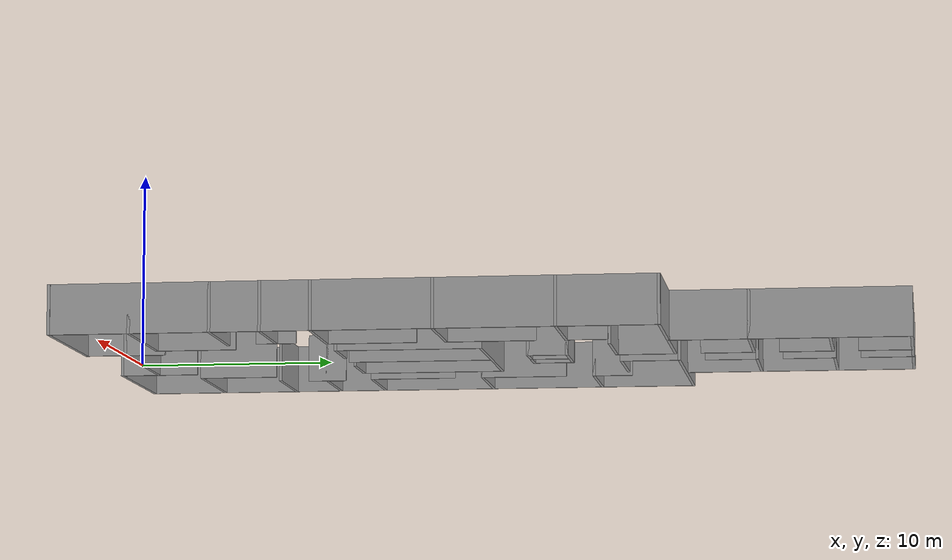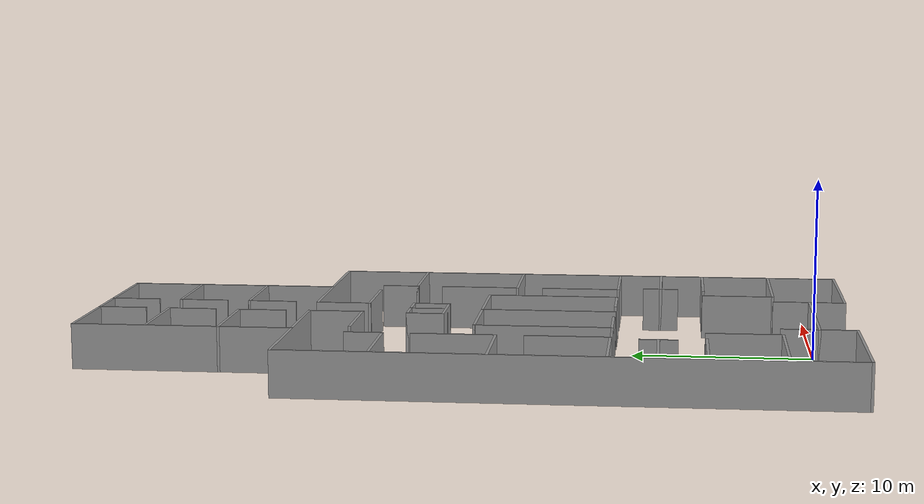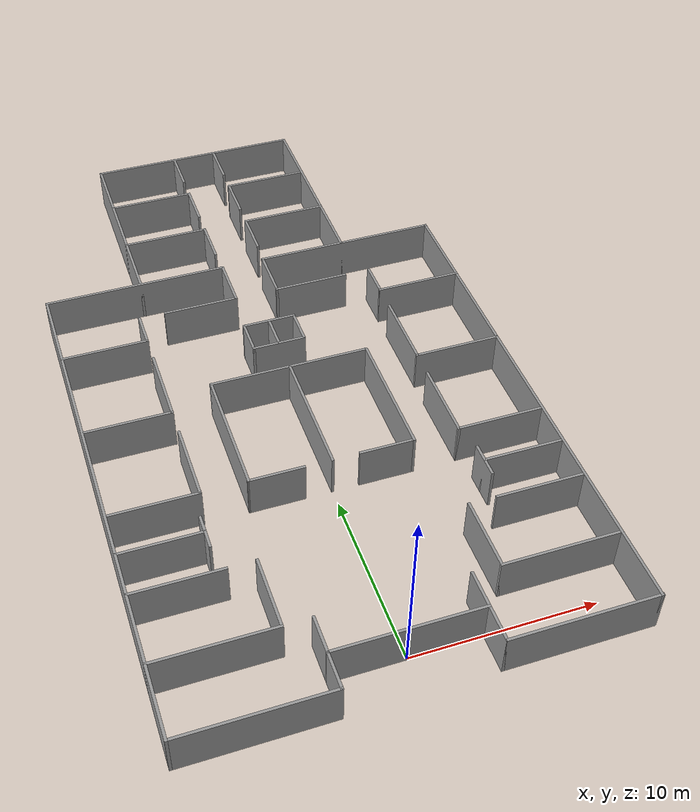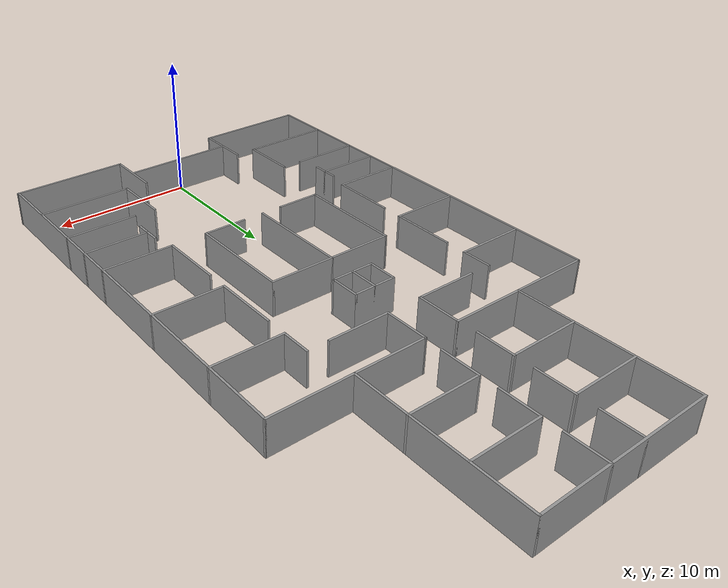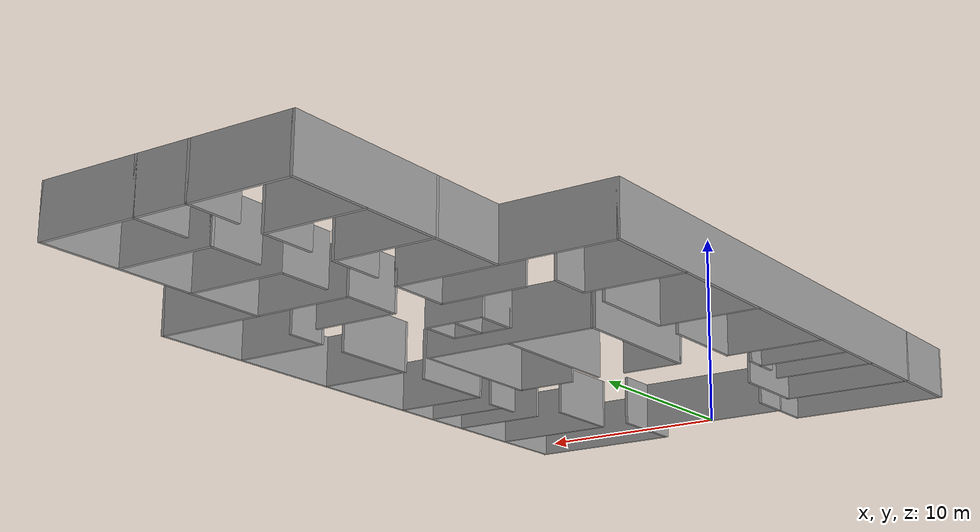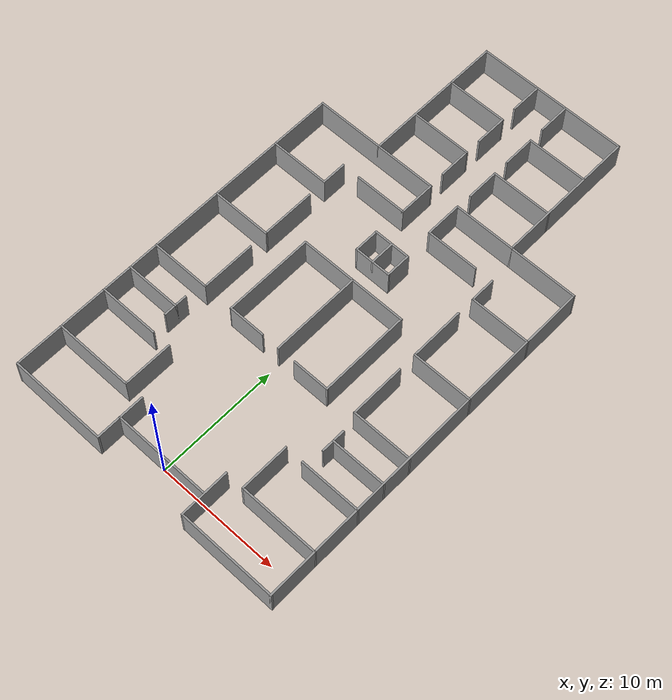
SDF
<?xml version='1.0'?>
<sdf version='1.6'>
  <model name='hospital__model'>
    <pose frame=''>0.015862 19 0 0 -0 0</pose>
    <link name='Wall_0'>
      <collision name='Wall_0_Collision'>
        <geometry>
          <box>
            <size>4.15 0.15 2.5</size>
          </box>
        </geometry>
        <pose frame=''>0 0 1.25 0 -0 0</pose>
      </collision>
      <visual name='Wall_0_Visual'>
        <pose frame=''>0 0 1.25 0 -0 0</pose>
        <geometry>
          <box>
            <size>4.15 0.15 2.5</size>
          </box>
        </geometry>
        <material>
          <script>
            <uri>file://media/materials/scripts/gazebo.material</uri>
            <name>Gazebo/Grey</name>
          </script>
          <ambient>1 1 1 1</ambient>
        </material>
        <meta>
          <layer>0</layer>
        </meta>
      </visual>
      <pose frame=''>-4.01586 -19 0 0 -0 -1.5708</pose>
    </link>
    <link name='Wall_10'>
      <collision name='Wall_10_Collision'>
        <geometry>
          <box>
            <size>6.6 0.15 2.5</size>
          </box>
        </geometry>
        <pose frame=''>0 0 1.25 0 -0 0</pose>
      </collision>
      <visual name='Wall_10_Visual'>
        <pose frame=''>0 0 1.25 0 -0 0</pose>
        <geometry>
          <box>
            <size>6.6 0.15 2.5</size>
          </box>
        </geometry>
        <material>
          <script>
            <uri>file://media/materials/scripts/gazebo.material</uri>
            <name>Gazebo/Grey</name>
          </script>
          <ambient>1 1 1 1</ambient>
        </material>
        <meta>
          <layer>0</layer>
        </meta>
      </visual>
      <pose frame=''>-8.79086 -17 0 0 -0 3.14159</pose>
    </link>
    <link name='Wall_100'>
      <collision name='Wall_100_Collision'>
        <geometry>
          <box>
            <size>2.8 0.15 2.5</size>
          </box>
        </geometry>
        <pose frame=''>0 0 1.25 0 -0 0</pose>
      </collision>
      <visual name='Wall_100_Visual'>
        <pose frame=''>0 0 1.25 0 -0 0</pose>
        <geometry>
          <box>
            <size>2.8 0.15 2.5</size>
          </box>
        </geometry>
        <material>
          <script>
            <uri>file://media/materials/scripts/gazebo.material</uri>
            <name>Gazebo/Grey</name>
          </script>
          <ambient>1 1 1 1</ambient>
        </material>
        <meta>
          <layer>0</layer>
        </meta>
      </visual>
      <pose frame=''>1.33414 19.675 0 0 -0 1.5708</pose>
    </link>
    <link name='Wall_102'>
      <collision name='Wall_102_Collision'>
        <geometry>
          <box>
            <size>3.15 0.15 2.5</size>
          </box>
        </geometry>
        <pose frame=''>0 0 1.25 0 -0 0</pose>
      </collision>
      <visual name='Wall_102_Visual'>
        <pose frame=''>0 0 1.25 0 -0 0</pose>
        <geometry>
          <box>
            <size>3.15 0.15 2.5</size>
          </box>
        </geometry>
        <material>
          <script>
            <uri>file://media/materials/scripts/gazebo.material</uri>
            <name>Gazebo/Grey</name>
          </script>
          <ambient>1 1 1 1</ambient>
        </material>
        <meta>
          <layer>0</layer>
        </meta>
      </visual>
      <pose frame=''>-3.06586 -8 0 0 -0 0</pose>
    </link>
    <link name='Wall_104'>
      <collision name='Wall_104_Collision'>
        <geometry>
          <box>
            <size>3.15 0.15 2.5</size>
          </box>
        </geometry>
        <pose frame=''>0 0 1.25 0 -0 0</pose>
      </collision>
      <visual name='Wall_104_Visual'>
        <pose frame=''>0 0 1.25 0 -0 0</pose>
        <geometry>
          <box>
            <size>3.15 0.15 2.5</size>
          </box>
        </geometry>
        <material>
          <script>
            <uri>file://media/materials/scripts/gazebo.material</uri>
            <name>Gazebo/Grey</name>
          </script>
          <ambient>1 1 1 1</ambient>
        </material>
        <meta>
          <layer>0</layer>
        </meta>
      </visual>
      <pose frame=''>3.03414 -8 0 0 -0 0</pose>
    </link>
    <link name='Wall_106'>
      <collision name='Wall_106_Collision'>
        <geometry>
          <box>
            <size>7.55 0.15 2.5</size>
          </box>
        </geometry>
        <pose frame=''>0 0 1.25 0 -0 0</pose>
      </collision>
      <visual name='Wall_106_Visual'>
        <pose frame=''>0 0 1.25 0 -0 0</pose>
        <geometry>
          <box>
            <size>7.55 0.15 2.5</size>
          </box>
        </geometry>
        <material>
          <script>
            <uri>file://media/materials/scripts/gazebo.material</uri>
            <name>Gazebo/Grey</name>
          </script>
          <ambient>1 1 1 1</ambient>
        </material>
        <meta>
          <layer>0</layer>
        </meta>
      </visual>
      <pose frame=''>-4.56386 -4.3 0 0 -0 1.57134</pose>
    </link>
    <link name='Wall_108'>
      <collision name='Wall_108_Collision'>
        <geometry>
          <box>
            <size>9.25 0.15 2.5</size>
          </box>
        </geometry>
        <pose frame=''>0 0 1.25 0 -0 0</pose>
      </collision>
      <visual name='Wall_108_Visual'>
        <pose frame=''>0 0 1.25 0 -0 0</pose>
        <geometry>
          <box>
            <size>9.25 0.15 2.5</size>
          </box>
        </geometry>
        <material>
          <script>
            <uri>file://media/materials/scripts/gazebo.material</uri>
            <name>Gazebo/Grey</name>
          </script>
          <ambient>1 1 1 1</ambient>
        </material>
        <meta>
          <layer>0</layer>
        </meta>
      </visual>
      <pose frame=''>-0.015862 -0.6 0 0 -0 0</pose>
    </link>
    <link name='Wall_110'>
      <collision name='Wall_110_Collision'>
        <geometry>
          <box>
            <size>3.15 0.15 2.5</size>
          </box>
        </geometry>
        <pose frame=''>0 0 1.25 0 -0 0</pose>
      </collision>
      <visual name='Wall_110_Visual'>
        <pose frame=''>0 0 1.25 0 -0 0</pose>
        <geometry>
          <box>
            <size>3.15 0.15 2.5</size>
          </box>
        </geometry>
        <material>
          <script>
            <uri>file://media/materials/scripts/gazebo.material</uri>
            <name>Gazebo/Grey</name>
          </script>
          <ambient>1 1 1 1</ambient>
        </material>
        <meta>
          <layer>0</layer>
        </meta>
      </visual>
      <pose frame=''>-0.015862 3.45 0 0 -0 0</pose>
    </link>
    <link name='Wall_112'>
      <collision name='Wall_112_Collision'>
        <geometry>
          <box>
            <size>3.15 0.15 2.5</size>
          </box>
        </geometry>
        <pose frame=''>0 0 1.25 0 -0 0</pose>
      </collision>
      <visual name='Wall_112_Visual'>
        <pose frame=''>0 0 1.25 0 -0 0</pose>
        <geometry>
          <box>
            <size>3.15 0.15 2.5</size>
          </box>
        </geometry>
        <material>
          <script>
            <uri>file://media/materials/scripts/gazebo.material</uri>
            <name>Gazebo/Grey</name>
          </script>
          <ambient>1 1 1 1</ambient>
        </material>
        <meta>
          <layer>0</layer>
        </meta>
      </visual>
      <pose frame=''>-0.015862 1.45 0 0 -0 0</pose>
    </link>
    <link name='Wall_114'>
      <collision name='Wall_114_Collision'>
        <geometry>
          <box>
            <size>2.15 0.15 2.5</size>
          </box>
        </geometry>
        <pose frame=''>0 0 1.25 0 -0 0</pose>
      </collision>
      <visual name='Wall_114_Visual'>
        <pose frame=''>0 0 1.25 0 -0 0</pose>
        <geometry>
          <box>
            <size>2.15 0.15 2.5</size>
          </box>
        </geometry>
        <material>
          <script>
            <uri>file://media/materials/scripts/gazebo.material</uri>
            <name>Gazebo/Grey</name>
          </script>
          <ambient>1 1 1 1</ambient>
        </material>
        <meta>
          <layer>0</layer>
        </meta>
      </visual>
      <pose frame=''>-1.51586 2.45 0 0 -0 -1.5708</pose>
    </link>
    <link name='Wall_116'>
      <collision name='Wall_116_Collision'>
        <geometry>
          <box>
            <size>2.15 0.15 2.5</size>
          </box>
        </geometry>
        <pose frame=''>0 0 1.25 0 -0 0</pose>
      </collision>
      <visual name='Wall_116_Visual'>
        <pose frame=''>0 0 1.25 0 -0 0</pose>
        <geometry>
          <box>
            <size>2.15 0.15 2.5</size>
          </box>
        </geometry>
        <material>
          <script>
            <uri>file://media/materials/scripts/gazebo.material</uri>
            <name>Gazebo/Grey</name>
          </script>
          <ambient>1 1 1 1</ambient>
        </material>
        <meta>
          <layer>0</layer>
        </meta>
      </visual>
      <pose frame=''>1.48414 2.45 0 0 -0 -1.5708</pose>
    </link>
    <link name='Wall_118'>
      <collision name='Wall_118_Collision'>
        <geometry>
          <box>
            <size>2.15 0.15 2.5</size>
          </box>
        </geometry>
        <pose frame=''>0 0 1.25 0 -0 0</pose>
      </collision>
      <visual name='Wall_118_Visual'>
        <pose frame=''>0 0 1.25 0 -0 0</pose>
        <geometry>
          <box>
            <size>2.15 0.15 2.5</size>
          </box>
        </geometry>
        <material>
          <script>
            <uri>file://media/materials/scripts/gazebo.material</uri>
            <name>Gazebo/Grey</name>
          </script>
          <ambient>1 1 1 1</ambient>
        </material>
        <meta>
          <layer>0</layer>
        </meta>
      </visual>
      <pose frame=''>-0.015862 2.45 0 0 -0 -1.5708</pose>
    </link>
    <link name='Wall_12'>
      <collision name='Wall_12_Collision'>
        <geometry>
          <box>
            <size>4.15 0.15 2.5</size>
          </box>
        </geometry>
        <pose frame=''>0 0 1.25 0 -0 0</pose>
      </collision>
      <visual name='Wall_12_Visual'>
        <pose frame=''>0 0 1.25 0 -0 0</pose>
        <geometry>
          <box>
            <size>4.15 0.15 2.5</size>
          </box>
        </geometry>
        <material>
          <script>
            <uri>file://media/materials/scripts/gazebo.material</uri>
            <name>Gazebo/Grey</name>
          </script>
          <ambient>1 1 1 1</ambient>
        </material>
        <meta>
          <layer>0</layer>
        </meta>
      </visual>
      <pose frame=''>-5.56586 -15 0 0 -0 1.5708</pose>
    </link>
    <link name='Wall_121'>
      <collision name='Wall_121_Collision'>
        <geometry>
          <box>
            <size>7.55 0.15 2.5</size>
          </box>
        </geometry>
        <pose frame=''>0 0 1.25 0 -0 0</pose>
      </collision>
      <visual name='Wall_121_Visual'>
        <pose frame=''>0 0 1.25 0 -0 0</pose>
        <geometry>
          <box>
            <size>7.55 0.15 2.5</size>
          </box>
        </geometry>
        <material>
          <script>
            <uri>file://media/materials/scripts/gazebo.material</uri>
            <name>Gazebo/Grey</name>
          </script>
          <ambient>1 1 1 1</ambient>
        </material>
        <meta>
          <layer>0</layer>
        </meta>
      </visual>
      <pose frame=''>4.53414 -4.3 0 0 -0 -1.5708</pose>
    </link>
    <link name='Wall_123'>
      <collision name='Wall_123_Collision'>
        <geometry>
          <box>
            <size>7.55 0.15 2.5</size>
          </box>
        </geometry>
        <pose frame=''>0 0 1.25 0 -0 0</pose>
      </collision>
      <visual name='Wall_123_Visual'>
        <pose frame=''>0 0 1.25 0 -0 0</pose>
        <geometry>
          <box>
            <size>7.55 0.15 2.5</size>
          </box>
        </geometry>
        <material>
          <script>
            <uri>file://media/materials/scripts/gazebo.material</uri>
            <name>Gazebo/Grey</name>
          </script>
          <ambient>1 1 1 1</ambient>
        </material>
        <meta>
          <layer>0</layer>
        </meta>
      </visual>
      <pose frame=''>-0.015862 -4.3 0 0 -0 -1.5708</pose>
    </link>
    <link name='Wall_14'>
      <collision name='Wall_14_Collision'>
        <geometry>
          <box>
            <size>5.05 0.15 2.5</size>
          </box>
        </geometry>
        <pose frame=''>0 0 1.25 0 -0 0</pose>
      </collision>
      <visual name='Wall_14_Visual'>
        <pose frame=''>0 0 1.25 0 -0 0</pose>
        <geometry>
          <box>
            <size>5.05 0.15 2.5</size>
          </box>
        </geometry>
        <material>
          <script>
            <uri>file://media/materials/scripts/gazebo.material</uri>
            <name>Gazebo/Grey</name>
          </script>
          <ambient>1 1 1 1</ambient>
        </material>
        <meta>
          <layer>0</layer>
        </meta>
      </visual>
      <pose frame=''>-9.56586 -13 0 0 -0 3.14159</pose>
    </link>
    <link name='Wall_17'>
      <collision name='Wall_17_Collision'>
        <geometry>
          <box>
            <size>2.05 0.15 2.5</size>
          </box>
        </geometry>
        <pose frame=''>0 0 1.25 0 -0 0</pose>
      </collision>
      <visual name='Wall_17_Visual'>
        <pose frame=''>0 0 1.25 0 -0 0</pose>
        <geometry>
          <box>
            <size>2.05 0.15 2.5</size>
          </box>
        </geometry>
        <material>
          <script>
            <uri>file://media/materials/scripts/gazebo.material</uri>
            <name>Gazebo/Grey</name>
          </script>
          <ambient>1 1 1 1</ambient>
        </material>
        <meta>
          <layer>0</layer>
        </meta>
      </visual>
      <pose frame=''>-7.51586 -10.5 0 0 -0 1.5708</pose>
    </link>
    <link name='Wall_19'>
      <collision name='Wall_19_Collision'>
        <geometry>
          <box>
            <size>4.65 0.15 2.5</size>
          </box>
        </geometry>
        <pose frame=''>0 0 1.25 0 -0 0</pose>
      </collision>
      <visual name='Wall_19_Visual'>
        <pose frame=''>0 0 1.25 0 -0 0</pose>
        <geometry>
          <box>
            <size>4.65 0.15 2.5</size>
          </box>
        </geometry>
        <material>
          <script>
            <uri>file://media/materials/scripts/gazebo.material</uri>
            <name>Gazebo/Grey</name>
          </script>
          <ambient>1 1 1 1</ambient>
        </material>
        <meta>
          <layer>0</layer>
        </meta>
      </visual>
      <pose frame=''>-9.76586 -10.5 0 0 -0 3.14159</pose>
    </link>
    <link name='Wall_2'>
      <collision name='Wall_2_Collision'>
        <geometry>
          <box>
            <size>8.15 0.15 2.5</size>
          </box>
        </geometry>
        <pose frame=''>0 0 1.25 0 -0 0</pose>
      </collision>
      <visual name='Wall_2_Visual'>
        <pose frame=''>0 0 1.25 0 -0 0</pose>
        <geometry>
          <box>
            <size>8.15 0.15 2.5</size>
          </box>
        </geometry>
        <material>
          <script>
            <uri>file://media/materials/scripts/gazebo.material</uri>
            <name>Gazebo/Grey</name>
          </script>
          <ambient>1 1 1 1</ambient>
        </material>
        <meta>
          <layer>0</layer>
        </meta>
      </visual>
      <pose frame=''>-0.015862 -19 0 0 -0 0</pose>
    </link>
    <link name='Wall_21'>
      <collision name='Wall_21_Collision'>
        <geometry>
          <box>
            <size>5.05 0.15 2.5</size>
          </box>
        </geometry>
        <pose frame=''>0 0 1.25 0 -0 0</pose>
      </collision>
      <visual name='Wall_21_Visual'>
        <pose frame=''>0 0 1.25 0 -0 0</pose>
        <geometry>
          <box>
            <size>5.05 0.15 2.5</size>
          </box>
        </geometry>
        <material>
          <script>
            <uri>file://media/materials/scripts/gazebo.material</uri>
            <name>Gazebo/Grey</name>
          </script>
          <ambient>1 1 1 1</ambient>
        </material>
        <meta>
          <layer>0</layer>
        </meta>
      </visual>
      <pose frame=''>-9.56586 -8 0 0 -0 3.14159</pose>
    </link>
    <link name='Wall_23'>
      <collision name='Wall_23_Collision'>
        <geometry>
          <box>
            <size>4.6 0.15 2.5</size>
          </box>
        </geometry>
        <pose frame=''>0 0 1.25 0 -0 0</pose>
      </collision>
      <visual name='Wall_23_Visual'>
        <pose frame=''>0 0 1.25 0 -0 0</pose>
        <geometry>
          <box>
            <size>4.6 0.15 2.5</size>
          </box>
        </geometry>
        <material>
          <script>
            <uri>file://media/materials/scripts/gazebo.material</uri>
            <name>Gazebo/Grey</name>
          </script>
          <ambient>1 1 1 1</ambient>
        </material>
        <meta>
          <layer>0</layer>
        </meta>
      </visual>
      <pose frame=''>-7.11586 -5.775 0 0 -0 1.5708</pose>
    </link>
    <link name='Wall_25'>
      <collision name='Wall_25_Collision'>
        <geometry>
          <box>
            <size>5.05 0.15 2.5</size>
          </box>
        </geometry>
        <pose frame=''>0 0 1.25 0 -0 0</pose>
      </collision>
      <visual name='Wall_25_Visual'>
        <pose frame=''>0 0 1.25 0 -0 0</pose>
        <geometry>
          <box>
            <size>5.05 0.15 2.5</size>
          </box>
        </geometry>
        <material>
          <script>
            <uri>file://media/materials/scripts/gazebo.material</uri>
            <name>Gazebo/Grey</name>
          </script>
          <ambient>1 1 1 1</ambient>
        </material>
        <meta>
          <layer>0</layer>
        </meta>
      </visual>
      <pose frame=''>-9.56586 -2 0 0 -0 3.14159</pose>
    </link>
    <link name='Wall_28'>
      <collision name='Wall_28_Collision'>
        <geometry>
          <box>
            <size>4.6 0.15 2.5</size>
          </box>
        </geometry>
        <pose frame=''>0 0 1.25 0 -0 0</pose>
      </collision>
      <visual name='Wall_28_Visual'>
        <pose frame=''>0 0 1.25 0 -0 0</pose>
        <geometry>
          <box>
            <size>4.6 0.15 2.5</size>
          </box>
        </geometry>
        <material>
          <script>
            <uri>file://media/materials/scripts/gazebo.material</uri>
            <name>Gazebo/Grey</name>
          </script>
          <ambient>1 1 1 1</ambient>
        </material>
        <meta>
          <layer>0</layer>
        </meta>
      </visual>
      <pose frame=''>-7.11586 0.225001 0 0 -0 -1.5708</pose>
    </link>
    <link name='Wall_30'>
      <collision name='Wall_30_Collision'>
        <geometry>
          <box>
            <size>5.05 0.15 2.5</size>
          </box>
        </geometry>
        <pose frame=''>0 0 1.25 0 -0 0</pose>
      </collision>
      <visual name='Wall_30_Visual'>
        <pose frame=''>0 0 1.25 0 -0 0</pose>
        <geometry>
          <box>
            <size>5.05 0.15 2.5</size>
          </box>
        </geometry>
        <material>
          <script>
            <uri>file://media/materials/scripts/gazebo.material</uri>
            <name>Gazebo/Grey</name>
          </script>
          <ambient>1 1 1 1</ambient>
        </material>
        <meta>
          <layer>0</layer>
        </meta>
      </visual>
      <pose frame=''>-9.56586 4 0 0 -0 3.14159</pose>
    </link>
    <link name='Wall_32'>
      <collision name='Wall_32_Collision'>
        <geometry>
          <box>
            <size>2.15 0.15 2.5</size>
          </box>
        </geometry>
        <pose frame=''>0 0 1.25 0 -0 0</pose>
      </collision>
      <visual name='Wall_32_Visual'>
        <pose frame=''>0 0 1.25 0 -0 0</pose>
        <geometry>
          <box>
            <size>2.15 0.15 2.5</size>
          </box>
        </geometry>
        <material>
          <script>
            <uri>file://media/materials/scripts/gazebo.material</uri>
            <name>Gazebo/Grey</name>
          </script>
          <ambient>1 1 1 1</ambient>
        </material>
        <meta>
          <layer>0</layer>
        </meta>
      </visual>
      <pose frame=''>-7.11586 5 0 0 -0 1.5708</pose>
    </link>
    <link name='Wall_34'>
      <collision name='Wall_34_Collision'>
        <geometry>
          <box>
            <size>4.425 0.15 2.5</size>
          </box>
        </geometry>
        <pose frame=''>0 0 1.25 0 -0 0</pose>
      </collision>
      <visual name='Wall_34_Visual'>
        <pose frame=''>0 0 1.25 0 -0 0</pose>
        <geometry>
          <box>
            <size>4.425 0.15 2.5</size>
          </box>
        </geometry>
        <material>
          <script>
            <uri>file://media/materials/scripts/gazebo.material</uri>
            <name>Gazebo/Grey</name>
          </script>
          <ambient>1 1 1 1</ambient>
        </material>
        <meta>
          <layer>0</layer>
        </meta>
      </visual>
      <pose frame=''>-3.42836 6 0 0 -0 0</pose>
    </link>
    <link name='Wall_36'>
      <collision name='Wall_36_Collision'>
        <geometry>
          <box>
            <size>10.875 0.15 2.5</size>
          </box>
        </geometry>
        <pose frame=''>0 0 1.25 0 -0 0</pose>
      </collision>
      <visual name='Wall_36_Visual'>
        <pose frame=''>0 0 1.25 0 -0 0</pose>
        <geometry>
          <box>
            <size>10.875 0.15 2.5</size>
          </box>
        </geometry>
        <material>
          <script>
            <uri>file://media/materials/scripts/gazebo.material</uri>
            <name>Gazebo/Grey</name>
          </script>
          <ambient>1 1 1 1</ambient>
        </material>
        <meta>
          <layer>0</layer>
        </meta>
      </visual>
      <pose frame=''>-6.65336 9 0 0 -0 0</pose>
    </link>
    <link name='Wall_38'>
      <collision name='Wall_38_Collision'>
        <geometry>
          <box>
            <size>2.75 0.15 2.5</size>
          </box>
        </geometry>
        <pose frame=''>0 0 1.25 0 -0 0</pose>
      </collision>
      <visual name='Wall_38_Visual'>
        <pose frame=''>0 0 1.25 0 -0 0</pose>
        <geometry>
          <box>
            <size>2.75 0.15 2.5</size>
          </box>
        </geometry>
        <material>
          <script>
            <uri>file://media/materials/scripts/gazebo.material</uri>
            <name>Gazebo/Grey</name>
          </script>
          <ambient>1 1 1 1</ambient>
        </material>
        <meta>
          <layer>0</layer>
        </meta>
      </visual>
      <pose frame=''>-1.36586 11.7 0 0 -0 1.5708</pose>
    </link>
    <link name='Wall_4'>
      <collision name='Wall_4_Collision'>
        <geometry>
          <box>
            <size>4.15 0.15 2.5</size>
          </box>
        </geometry>
        <pose frame=''>0 0 1.25 0 -0 0</pose>
      </collision>
      <visual name='Wall_4_Visual'>
        <pose frame=''>0 0 1.25 0 -0 0</pose>
        <geometry>
          <box>
            <size>4.15 0.15 2.5</size>
          </box>
        </geometry>
        <material>
          <script>
            <uri>file://media/materials/scripts/gazebo.material</uri>
            <name>Gazebo/Grey</name>
          </script>
          <ambient>1 1 1 1</ambient>
        </material>
        <meta>
          <layer>0</layer>
        </meta>
      </visual>
      <pose frame=''>3.98414 -19 0 0 -0 1.5708</pose>
    </link>
    <link name='Wall_40'>
      <collision name='Wall_40_Collision'>
        <geometry>
          <box>
            <size>3.15 0.15 2.5</size>
          </box>
        </geometry>
        <pose frame=''>0 0 1.25 0 -0 0</pose>
      </collision>
      <visual name='Wall_40_Visual'>
        <pose frame=''>0 0 1.25 0 -0 0</pose>
        <geometry>
          <box>
            <size>3.15 0.15 2.5</size>
          </box>
        </geometry>
        <material>
          <script>
            <uri>file://media/materials/scripts/gazebo.material</uri>
            <name>Gazebo/Grey</name>
          </script>
          <ambient>1 1 1 1</ambient>
        </material>
        <meta>
          <layer>0</layer>
        </meta>
      </visual>
      <pose frame=''>-1.29086 7.5 0 0 -0 1.5708</pose>
    </link>
    <link name='Wall_42'>
      <collision name='Wall_42_Collision'>
        <geometry>
          <box>
            <size>5.15 0.15 2.5</size>
          </box>
        </geometry>
        <pose frame=''>0 0 1.25 0 -0 0</pose>
      </collision>
      <visual name='Wall_42_Visual'>
        <pose frame=''>0 0 1.25 0 -0 0</pose>
        <geometry>
          <box>
            <size>5.15 0.15 2.5</size>
          </box>
        </geometry>
        <material>
          <script>
            <uri>file://media/materials/scripts/gazebo.material</uri>
            <name>Gazebo/Grey</name>
          </script>
          <ambient>1 1 1 1</ambient>
        </material>
        <meta>
          <layer>0</layer>
        </meta>
      </visual>
      <pose frame=''>-3.86586 13 0 0 -0 3.14159</pose>
    </link>
    <link name='Wall_44'>
      <collision name='Wall_44_Collision'>
        <geometry>
          <box>
            <size>12.15 0.15 2.5</size>
          </box>
        </geometry>
        <pose frame=''>0 0 1.25 0 -0 0</pose>
      </collision>
      <visual name='Wall_44_Visual'>
        <pose frame=''>0 0 1.25 0 -0 0</pose>
        <geometry>
          <box>
            <size>12.15 0.15 2.5</size>
          </box>
        </geometry>
        <material>
          <script>
            <uri>file://media/materials/scripts/gazebo.material</uri>
            <name>Gazebo/Grey</name>
          </script>
          <ambient>1 1 1 1</ambient>
        </material>
        <meta>
          <layer>0</layer>
        </meta>
      </visual>
      <pose frame=''>-6.36586 15 0 0 -0 1.5708</pose>
    </link>
    <link name='Wall_46'>
      <collision name='Wall_46_Collision'>
        <geometry>
          <box>
            <size>5.15 0.15 2.5</size>
          </box>
        </geometry>
        <pose frame=''>0 0 1.25 0 -0 0</pose>
      </collision>
      <visual name='Wall_46_Visual'>
        <pose frame=''>0 0 1.25 0 -0 0</pose>
        <geometry>
          <box>
            <size>5.15 0.15 2.5</size>
          </box>
        </geometry>
        <material>
          <script>
            <uri>file://media/materials/scripts/gazebo.material</uri>
            <name>Gazebo/Grey</name>
          </script>
          <ambient>1 1 1 1</ambient>
        </material>
        <meta>
          <layer>0</layer>
        </meta>
      </visual>
      <pose frame=''>-3.86586 17 0 0 -0 3.14159</pose>
    </link>
    <link name='Wall_48'>
      <collision name='Wall_48_Collision'>
        <geometry>
          <box>
            <size>12.85 0.15 2.5</size>
          </box>
        </geometry>
        <pose frame=''>0 0 1.25 0 -0 0</pose>
      </collision>
      <visual name='Wall_48_Visual'>
        <pose frame=''>0 0 1.25 0 -0 0</pose>
        <geometry>
          <box>
            <size>12.85 0.15 2.5</size>
          </box>
        </geometry>
        <material>
          <script>
            <uri>file://media/materials/scripts/gazebo.material</uri>
            <name>Gazebo/Grey</name>
          </script>
          <ambient>1 1 1 1</ambient>
        </material>
        <meta>
          <layer>0</layer>
        </meta>
      </visual>
      <pose frame=''>-0.015862 21 0 0 -0 0</pose>
    </link>
    <link name='Wall_54'>
      <collision name='Wall_54_Collision'>
        <geometry>
          <box>
            <size>2.75 0.15 2.5</size>
          </box>
        </geometry>
        <pose frame=''>0 0 1.25 0 -0 0</pose>
      </collision>
      <visual name='Wall_54_Visual'>
        <pose frame=''>0 0 1.25 0 -0 0</pose>
        <geometry>
          <box>
            <size>2.75 0.15 2.5</size>
          </box>
        </geometry>
        <material>
          <script>
            <uri>file://media/materials/scripts/gazebo.material</uri>
            <name>Gazebo/Grey</name>
          </script>
          <ambient>1 1 1 1</ambient>
        </material>
        <meta>
          <layer>0</layer>
        </meta>
      </visual>
      <pose frame=''>-1.36586 15.7 0 0 -0 1.5708</pose>
    </link>
    <link name='Wall_56'>
      <collision name='Wall_56_Collision'>
        <geometry>
          <box>
            <size>2.75 0.15 2.5</size>
          </box>
        </geometry>
        <pose frame=''>0 0 1.25 0 -0 0</pose>
      </collision>
      <visual name='Wall_56_Visual'>
        <pose frame=''>0 0 1.25 0 -0 0</pose>
        <geometry>
          <box>
            <size>2.75 0.15 2.5</size>
          </box>
        </geometry>
        <material>
          <script>
            <uri>file://media/materials/scripts/gazebo.material</uri>
            <name>Gazebo/Grey</name>
          </script>
          <ambient>1 1 1 1</ambient>
        </material>
        <meta>
          <layer>0</layer>
        </meta>
      </visual>
      <pose frame=''>-1.36586 19.7 0 0 -0 1.5708</pose>
    </link>
    <link name='Wall_58'>
      <collision name='Wall_58_Collision'>
        <geometry>
          <box>
            <size>8.15 0.15 2.5</size>
          </box>
        </geometry>
        <pose frame=''>0 0 1.25 0 -0 0</pose>
      </collision>
      <visual name='Wall_58_Visual'>
        <pose frame=''>0 0 1.25 0 -0 0</pose>
        <geometry>
          <box>
            <size>8.15 0.15 2.5</size>
          </box>
        </geometry>
        <material>
          <script>
            <uri>file://media/materials/scripts/gazebo.material</uri>
            <name>Gazebo/Grey</name>
          </script>
          <ambient>1 1 1 1</ambient>
        </material>
        <meta>
          <layer>0</layer>
        </meta>
      </visual>
      <pose frame=''>8.01586 -21 0 0 -0 0</pose>
    </link>
    <link name='Wall_6'>
      <collision name='Wall_6_Collision'>
        <geometry>
          <box>
            <size>8.15 0.15 2.5</size>
          </box>
        </geometry>
        <pose frame=''>0 0 1.25 0 -0 0</pose>
      </collision>
      <visual name='Wall_6_Visual'>
        <pose frame=''>0 0 1.25 0 -0 0</pose>
        <geometry>
          <box>
            <size>8.15 0.15 2.5</size>
          </box>
        </geometry>
        <material>
          <script>
            <uri>file://media/materials/scripts/gazebo.material</uri>
            <name>Gazebo/Grey</name>
          </script>
          <ambient>1 1 1 1</ambient>
        </material>
        <meta>
          <layer>0</layer>
        </meta>
      </visual>
      <pose frame=''>-8.01586 -21 0 0 -0 3.14159</pose>
    </link>
    <link name='Wall_60'>
      <collision name='Wall_60_Collision'>
        <geometry>
          <box>
            <size>30.15 0.15 2.5</size>
          </box>
        </geometry>
        <pose frame=''>0 0 1.25 0 -0 0</pose>
      </collision>
      <visual name='Wall_60_Visual'>
        <pose frame=''>0 0 1.25 0 -0 0</pose>
        <geometry>
          <box>
            <size>30.15 0.15 2.5</size>
          </box>
        </geometry>
        <material>
          <script>
            <uri>file://media/materials/scripts/gazebo.material</uri>
            <name>Gazebo/Grey</name>
          </script>
          <ambient>1 1 1 1</ambient>
        </material>
        <meta>
          <layer>0</layer>
        </meta>
      </visual>
      <pose frame=''>11.9841 -6 0 0 -0 1.5708</pose>
    </link>
    <link name='Wall_62'>
      <collision name='Wall_62_Collision'>
        <geometry>
          <box>
            <size>10.875 0.15 2.5</size>
          </box>
        </geometry>
        <pose frame=''>0 0 1.25 0 -0 0</pose>
      </collision>
      <visual name='Wall_62_Visual'>
        <pose frame=''>0 0 1.25 0 -0 0</pose>
        <geometry>
          <box>
            <size>10.875 0.15 2.5</size>
          </box>
        </geometry>
        <material>
          <script>
            <uri>file://media/materials/scripts/gazebo.material</uri>
            <name>Gazebo/Grey</name>
          </script>
          <ambient>1 1 1 1</ambient>
        </material>
        <meta>
          <layer>0</layer>
        </meta>
      </visual>
      <pose frame=''>6.62164 9 0 0 -0 0</pose>
    </link>
    <link name='Wall_64'>
      <collision name='Wall_64_Collision'>
        <geometry>
          <box>
            <size>4.15 0.15 2.5</size>
          </box>
        </geometry>
        <pose frame=''>0 0 1.25 0 -0 0</pose>
      </collision>
      <visual name='Wall_64_Visual'>
        <pose frame=''>0 0 1.25 0 -0 0</pose>
        <geometry>
          <box>
            <size>4.15 0.15 2.5</size>
          </box>
        </geometry>
        <material>
          <script>
            <uri>file://media/materials/scripts/gazebo.material</uri>
            <name>Gazebo/Grey</name>
          </script>
          <ambient>1 1 1 1</ambient>
        </material>
        <meta>
          <layer>0</layer>
        </meta>
      </visual>
      <pose frame=''>5.53414 -15 0 0 -0 1.5708</pose>
    </link>
    <link name='Wall_66'>
      <collision name='Wall_66_Collision'>
        <geometry>
          <box>
            <size>6.6 0.15 2.5</size>
          </box>
        </geometry>
        <pose frame=''>0 0 1.25 0 -0 0</pose>
      </collision>
      <visual name='Wall_66_Visual'>
        <pose frame=''>0 0 1.25 0 -0 0</pose>
        <geometry>
          <box>
            <size>6.6 0.15 2.5</size>
          </box>
        </geometry>
        <material>
          <script>
            <uri>file://media/materials/scripts/gazebo.material</uri>
            <name>Gazebo/Grey</name>
          </script>
          <ambient>1 1 1 1</ambient>
        </material>
        <meta>
          <layer>0</layer>
        </meta>
      </visual>
      <pose frame=''>8.75914 -17 0 0 -0 0</pose>
    </link>
    <link name='Wall_68'>
      <collision name='Wall_68_Collision'>
        <geometry>
          <box>
            <size>5.05 0.15 2.5</size>
          </box>
        </geometry>
        <pose frame=''>0 0 1.25 0 -0 0</pose>
      </collision>
      <visual name='Wall_68_Visual'>
        <pose frame=''>0 0 1.25 0 -0 0</pose>
        <geometry>
          <box>
            <size>5.05 0.15 2.5</size>
          </box>
        </geometry>
        <material>
          <script>
            <uri>file://media/materials/scripts/gazebo.material</uri>
            <name>Gazebo/Grey</name>
          </script>
          <ambient>1 1 1 1</ambient>
        </material>
        <meta>
          <layer>0</layer>
        </meta>
      </visual>
      <pose frame=''>9.53414 -13 0 0 -0 0</pose>
    </link>
    <link name='Wall_70'>
      <collision name='Wall_70_Collision'>
        <geometry>
          <box>
            <size>2.05 0.15 2.5</size>
          </box>
        </geometry>
        <pose frame=''>0 0 1.25 0 -0 0</pose>
      </collision>
      <visual name='Wall_70_Visual'>
        <pose frame=''>0 0 1.25 0 -0 0</pose>
        <geometry>
          <box>
            <size>2.05 0.15 2.5</size>
          </box>
        </geometry>
        <material>
          <script>
            <uri>file://media/materials/scripts/gazebo.material</uri>
            <name>Gazebo/Grey</name>
          </script>
          <ambient>1 1 1 1</ambient>
        </material>
        <meta>
          <layer>0</layer>
        </meta>
      </visual>
      <pose frame=''>7.48414 -10.5 0 0 -0 1.5708</pose>
    </link>
    <link name='Wall_72'>
      <collision name='Wall_72_Collision'>
        <geometry>
          <box>
            <size>4.65 0.15 2.5</size>
          </box>
        </geometry>
        <pose frame=''>0 0 1.25 0 -0 0</pose>
      </collision>
      <visual name='Wall_72_Visual'>
        <pose frame=''>0 0 1.25 0 -0 0</pose>
        <geometry>
          <box>
            <size>4.65 0.15 2.5</size>
          </box>
        </geometry>
        <material>
          <script>
            <uri>file://media/materials/scripts/gazebo.material</uri>
            <name>Gazebo/Grey</name>
          </script>
          <ambient>1 1 1 1</ambient>
        </material>
        <meta>
          <layer>0</layer>
        </meta>
      </visual>
      <pose frame=''>9.73414 -10.5 0 0 -0 0</pose>
    </link>
    <link name='Wall_74'>
      <collision name='Wall_74_Collision'>
        <geometry>
          <box>
            <size>4.6 0.15 2.5</size>
          </box>
        </geometry>
        <pose frame=''>0 0 1.25 0 -0 0</pose>
      </collision>
      <visual name='Wall_74_Visual'>
        <pose frame=''>0 0 1.25 0 -0 0</pose>
        <geometry>
          <box>
            <size>4.6 0.15 2.5</size>
          </box>
        </geometry>
        <material>
          <script>
            <uri>file://media/materials/scripts/gazebo.material</uri>
            <name>Gazebo/Grey</name>
          </script>
          <ambient>1 1 1 1</ambient>
        </material>
        <meta>
          <layer>0</layer>
        </meta>
      </visual>
      <pose frame=''>7.08414 -5.775 0 0 -0 1.5708</pose>
    </link>
    <link name='Wall_76'>
      <collision name='Wall_76_Collision'>
        <geometry>
          <box>
            <size>5.05 0.15 2.5</size>
          </box>
        </geometry>
        <pose frame=''>0 0 1.25 0 -0 0</pose>
      </collision>
      <visual name='Wall_76_Visual'>
        <pose frame=''>0 0 1.25 0 -0 0</pose>
        <geometry>
          <box>
            <size>5.05 0.15 2.5</size>
          </box>
        </geometry>
        <material>
          <script>
            <uri>file://media/materials/scripts/gazebo.material</uri>
            <name>Gazebo/Grey</name>
          </script>
          <ambient>1 1 1 1</ambient>
        </material>
        <meta>
          <layer>0</layer>
        </meta>
      </visual>
      <pose frame=''>9.53414 -8 0 0 -0 0</pose>
    </link>
    <link name='Wall_78'>
      <collision name='Wall_78_Collision'>
        <geometry>
          <box>
            <size>4.6 0.15 2.5</size>
          </box>
        </geometry>
        <pose frame=''>0 0 1.25 0 -0 0</pose>
      </collision>
      <visual name='Wall_78_Visual'>
        <pose frame=''>0 0 1.25 0 -0 0</pose>
        <geometry>
          <box>
            <size>4.6 0.15 2.5</size>
          </box>
        </geometry>
        <material>
          <script>
            <uri>file://media/materials/scripts/gazebo.material</uri>
            <name>Gazebo/Grey</name>
          </script>
          <ambient>1 1 1 1</ambient>
        </material>
        <meta>
          <layer>0</layer>
        </meta>
      </visual>
      <pose frame=''>7.08414 0.225001 0 0 -0 1.5708</pose>
    </link>
    <link name='Wall_8'>
      <collision name='Wall_8_Collision'>
        <geometry>
          <box>
            <size>30.15 0.15 2.5</size>
          </box>
        </geometry>
        <pose frame=''>0 0 1.25 0 -0 0</pose>
      </collision>
      <visual name='Wall_8_Visual'>
        <pose frame=''>0 0 1.25 0 -0 0</pose>
        <geometry>
          <box>
            <size>30.15 0.15 2.5</size>
          </box>
        </geometry>
        <material>
          <script>
            <uri>file://media/materials/scripts/gazebo.material</uri>
            <name>Gazebo/Grey</name>
          </script>
          <ambient>1 1 1 1</ambient>
        </material>
        <meta>
          <layer>0</layer>
        </meta>
      </visual>
      <pose frame=''>-12.0159 -6 0 0 -0 1.5708</pose>
    </link>
    <link name='Wall_80'>
      <collision name='Wall_80_Collision'>
        <geometry>
          <box>
            <size>5.05 0.15 2.5</size>
          </box>
        </geometry>
        <pose frame=''>0 0 1.25 0 -0 0</pose>
      </collision>
      <visual name='Wall_80_Visual'>
        <pose frame=''>0 0 1.25 0 -0 0</pose>
        <geometry>
          <box>
            <size>5.05 0.15 2.5</size>
          </box>
        </geometry>
        <material>
          <script>
            <uri>file://media/materials/scripts/gazebo.material</uri>
            <name>Gazebo/Grey</name>
          </script>
          <ambient>1 1 1 1</ambient>
        </material>
        <meta>
          <layer>0</layer>
        </meta>
      </visual>
      <pose frame=''>9.53414 -2 0 0 -0 0</pose>
    </link>
    <link name='Wall_82'>
      <collision name='Wall_82_Collision'>
        <geometry>
          <box>
            <size>5.05 0.15 2.5</size>
          </box>
        </geometry>
        <pose frame=''>0 0 1.25 0 -0 0</pose>
      </collision>
      <visual name='Wall_82_Visual'>
        <pose frame=''>0 0 1.25 0 -0 0</pose>
        <geometry>
          <box>
            <size>5.05 0.15 2.5</size>
          </box>
        </geometry>
        <material>
          <script>
            <uri>file://media/materials/scripts/gazebo.material</uri>
            <name>Gazebo/Grey</name>
          </script>
          <ambient>1 1 1 1</ambient>
        </material>
        <meta>
          <layer>0</layer>
        </meta>
      </visual>
      <pose frame=''>9.53414 4 0 0 -0 0</pose>
    </link>
    <link name='Wall_84'>
      <collision name='Wall_84_Collision'>
        <geometry>
          <box>
            <size>2.15 0.15 2.5</size>
          </box>
        </geometry>
        <pose frame=''>0 0 1.25 0 -0 0</pose>
      </collision>
      <visual name='Wall_84_Visual'>
        <pose frame=''>0 0 1.25 0 -0 0</pose>
        <geometry>
          <box>
            <size>2.15 0.15 2.5</size>
          </box>
        </geometry>
        <material>
          <script>
            <uri>file://media/materials/scripts/gazebo.material</uri>
            <name>Gazebo/Grey</name>
          </script>
          <ambient>1 1 1 1</ambient>
        </material>
        <meta>
          <layer>0</layer>
        </meta>
      </visual>
      <pose frame=''>7.08414 5 0 0 -0 1.5708</pose>
    </link>
    <link name='Wall_86'>
      <collision name='Wall_86_Collision'>
        <geometry>
          <box>
            <size>4.425 0.15 2.5</size>
          </box>
        </geometry>
        <pose frame=''>0 0 1.25 0 -0 0</pose>
      </collision>
      <visual name='Wall_86_Visual'>
        <pose frame=''>0 0 1.25 0 -0 0</pose>
        <geometry>
          <box>
            <size>4.425 0.15 2.5</size>
          </box>
        </geometry>
        <material>
          <script>
            <uri>file://media/materials/scripts/gazebo.material</uri>
            <name>Gazebo/Grey</name>
          </script>
          <ambient>1 1 1 1</ambient>
        </material>
        <meta>
          <layer>0</layer>
        </meta>
      </visual>
      <pose frame=''>3.39664 6 0 0 -0 3.14159</pose>
    </link>
    <link name='Wall_88'>
      <collision name='Wall_88_Collision'>
        <geometry>
          <box>
            <size>3.15 0.15 2.5</size>
          </box>
        </geometry>
        <pose frame=''>0 0 1.25 0 -0 0</pose>
      </collision>
      <visual name='Wall_88_Visual'>
        <pose frame=''>0 0 1.25 0 -0 0</pose>
        <geometry>
          <box>
            <size>3.15 0.15 2.5</size>
          </box>
        </geometry>
        <material>
          <script>
            <uri>file://media/materials/scripts/gazebo.material</uri>
            <name>Gazebo/Grey</name>
          </script>
          <ambient>1 1 1 1</ambient>
        </material>
        <meta>
          <layer>0</layer>
        </meta>
      </visual>
      <pose frame=''>1.25914 7.5 0 0 -0 1.5708</pose>
    </link>
    <link name='Wall_90'>
      <collision name='Wall_90_Collision'>
        <geometry>
          <box>
            <size>12.15 0.15 2.5</size>
          </box>
        </geometry>
        <pose frame=''>0 0 1.25 0 -0 0</pose>
      </collision>
      <visual name='Wall_90_Visual'>
        <pose frame=''>0 0 1.25 0 -0 0</pose>
        <geometry>
          <box>
            <size>12.15 0.15 2.5</size>
          </box>
        </geometry>
        <material>
          <script>
            <uri>file://media/materials/scripts/gazebo.material</uri>
            <name>Gazebo/Grey</name>
          </script>
          <ambient>1 1 1 1</ambient>
        </material>
        <meta>
          <layer>0</layer>
        </meta>
      </visual>
      <pose frame=''>6.33414 15 0 0 -0 -1.5708</pose>
    </link>
    <link name='Wall_92'>
      <collision name='Wall_92_Collision'>
        <geometry>
          <box>
            <size>2.8 0.15 2.5</size>
          </box>
        </geometry>
        <pose frame=''>0 0 1.25 0 -0 0</pose>
      </collision>
      <visual name='Wall_92_Visual'>
        <pose frame=''>0 0 1.25 0 -0 0</pose>
        <geometry>
          <box>
            <size>2.8 0.15 2.5</size>
          </box>
        </geometry>
        <material>
          <script>
            <uri>file://media/materials/scripts/gazebo.material</uri>
            <name>Gazebo/Grey</name>
          </script>
          <ambient>1 1 1 1</ambient>
        </material>
        <meta>
          <layer>0</layer>
        </meta>
      </visual>
      <pose frame=''>1.33414 11.675 0 0 -0 1.5708</pose>
    </link>
    <link name='Wall_94'>
      <collision name='Wall_94_Collision'>
        <geometry>
          <box>
            <size>5.15 0.15 2.5</size>
          </box>
        </geometry>
        <pose frame=''>0 0 1.25 0 -0 0</pose>
      </collision>
      <visual name='Wall_94_Visual'>
        <pose frame=''>0 0 1.25 0 -0 0</pose>
        <geometry>
          <box>
            <size>5.15 0.15 2.5</size>
          </box>
        </geometry>
        <material>
          <script>
            <uri>file://media/materials/scripts/gazebo.material</uri>
            <name>Gazebo/Grey</name>
          </script>
          <ambient>1 1 1 1</ambient>
        </material>
        <meta>
          <layer>0</layer>
        </meta>
      </visual>
      <pose frame=''>3.83414 13 0 0 -0 0</pose>
    </link>
    <link name='Wall_96'>
      <collision name='Wall_96_Collision'>
        <geometry>
          <box>
            <size>5.15 0.15 2.5</size>
          </box>
        </geometry>
        <pose frame=''>0 0 1.25 0 -0 0</pose>
      </collision>
      <visual name='Wall_96_Visual'>
        <pose frame=''>0 0 1.25 0 -0 0</pose>
        <geometry>
          <box>
            <size>5.15 0.15 2.5</size>
          </box>
        </geometry>
        <material>
          <script>
            <uri>file://media/materials/scripts/gazebo.material</uri>
            <name>Gazebo/Grey</name>
          </script>
          <ambient>1 1 1 1</ambient>
        </material>
        <meta>
          <layer>0</layer>
        </meta>
      </visual>
      <pose frame=''>3.83414 17 0 0 -0 0</pose>
    </link>
    <link name='Wall_98'>
      <collision name='Wall_98_Collision'>
        <geometry>
          <box>
            <size>2.8 0.15 2.5</size>
          </box>
        </geometry>
        <pose frame=''>0 0 1.25 0 -0 0</pose>
      </collision>
      <visual name='Wall_98_Visual'>
        <pose frame=''>0 0 1.25 0 -0 0</pose>
        <geometry>
          <box>
            <size>2.8 0.15 2.5</size>
          </box>
        </geometry>
        <material>
          <script>
            <uri>file://media/materials/scripts/gazebo.material</uri>
            <name>Gazebo/Grey</name>
          </script>
          <ambient>1 1 1 1</ambient>
        </material>
        <meta>
          <layer>0</layer>
        </meta>
      </visual>
      <pose frame=''>1.33414 15.675 0 0 -0 -1.5708</pose>
    </link>
    <static>1</static>
  </model>
</sdf>
